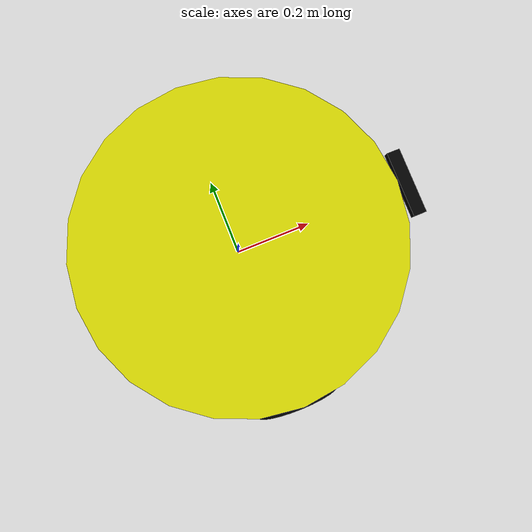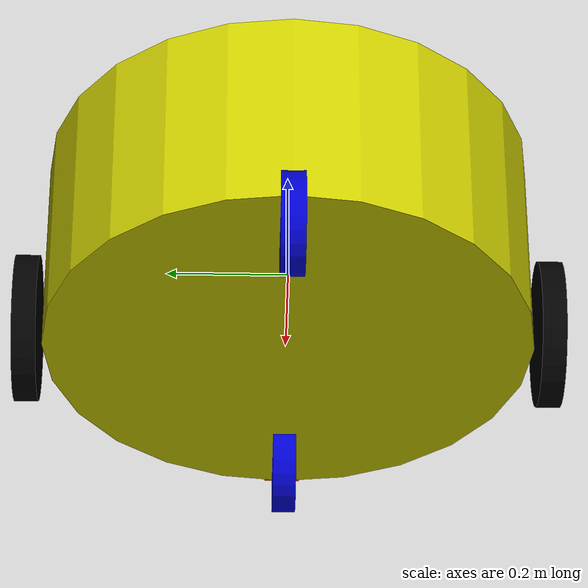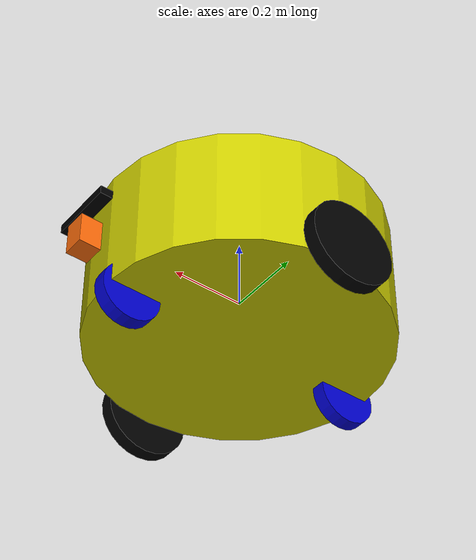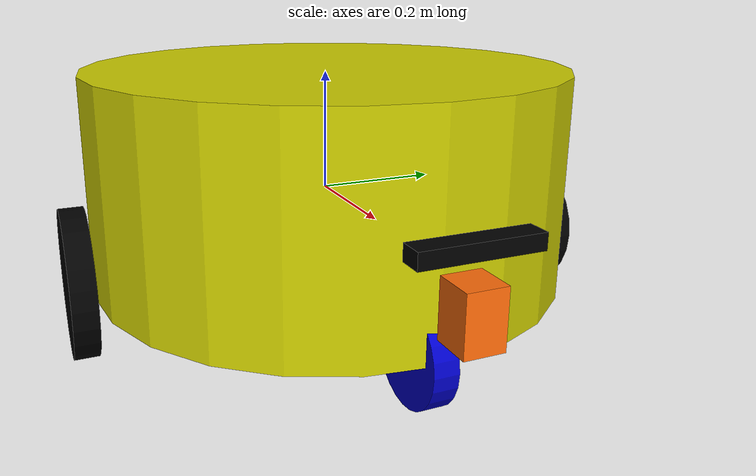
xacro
<?xml version="1.0"?>
<robot name="beebot" xmlns:xacro="http://ros.org/wiki/xacro">

  <xacro:include filename="$(find simulation_tobot)/beebot_description/urdf/beebot.gazebo" />
  <xacro:include filename="$(find simulation_tobot)/beebot_description/urdf/materials.xacro" />

  <!-- Constant for the xacro model -->
  <xacro:property name="GROUND_CLEARANCE" value="0.0335" />
  <xacro:property name="width" value="0.40" />
  <xacro:property name="xpsvwhloffset" value="0.3374" />
  <xacro:property name="yactwhloffset" value="0.4238" />
  <xacro:property name="bodylen" value="0.355" />
  <xacro:property name="wheel_w" value="0.039" />
  <xacro:property name="wheel_rad" value="0.1194" />
  <xacro:property name="plat_rad" value="0.3" />
  <xacro:property name="plat_len" value="0.005" />
  <xacro:property name="HIGH_PLATFORM" value="0.15" />
  <xacro:property name="posz_laser" value="0.285" />
  <xacro:property name="posz_camera" value="0.5" />
  <xacro:property name="fwheel_rad" value="0.08276" />
  <xacro:property name="pi" value="3.1415" />

  <!--Mass values for each link in kg-->
  <xacro:property name="base_mass" value="30" />
  <xacro:property name="plat_mass" value="2" />
  <xacro:property name="actvwheel_mass" value="10" />
  <xacro:property name="psvwheel_mass" value="1" />

  <!--Base_link-->
  <link name="base_link">
    <visual>
      <geometry>
         <cylinder length="${bodylen}" radius="${width}"/>
      </geometry>
      <origin rpy="0 0 0" xyz="0 0 ${GROUND_CLEARANCE}"/>
      <!--origin rpy="0 0 0" xyz="0 0 0"/-->
      <material name="yellow"/>
    </visual>
    <collision>
      <geometry>
         <cylinder length="${bodylen}" radius="${width}"/>
      </geometry>
      <origin rpy="0 0 0" xyz="0 0 ${bodylen/2}"/>
    </collision>
    <inertial>
        <mass value="${base_mass}" />
        <origin rpy="0 0 0" xyz="0 0 ${GROUND_CLEARANCE}" />
        <inertia
          ixx="${(1/12) * base_mass * ( 3 * (0.1 * 0.1 + width * width) + bodylen)}" ixy="0.0" ixz="0.0"
          iyy="${(1/12) * base_mass * ( 3 * (0.1 * 0.1 + width * width) + bodylen)}" iyz="0.0"
          izz="${0.5 * base_mass * ( 0.1 * 0.1 + width * width)}" />
    </inertial>
  </link>

  <!--left and right wheel-->
  <xacro:macro name="rl_wheel" params="prefix reflect">
    <link name="${prefix}_wheel">
      <visual>
        <geometry>
          <cylinder length="${wheel_w}" radius="${wheel_rad}"/>
        </geometry>
        <origin rpy="${pi/2} 0 0" xyz="0 0 0"/>
        <material name="black"/>
      </visual>
      <collision>
        <geometry>
          <cylinder length="${wheel_w}" radius="${wheel_rad}"/>
        </geometry>
        <origin rpy="${pi/2} 0 0" xyz="0 0 0"/>
      </collision>
      <inertial>
        <mass value="0.010" />
        <origin rpy="${pi/2} 0 0" xyz="0 0 0" />
        <inertia
          ixx="${(1/12) * actvwheel_mass * (3 * wheel_rad * wheel_rad + wheel_w * wheel_w)}" ixy="0.0" ixz="0.0"
          iyy="${(1/12) * actvwheel_mass * (3 * wheel_rad * wheel_rad + wheel_w * wheel_w)}" iyz="0.0"
          izz="${0.5 * actvwheel_mass * wheel_rad * wheel_rad }" />
      </inertial>
    </link>
    <joint name="${prefix}_wheel_joint" type="continuous">
      <parent link="base_link"/>
      <child link="${prefix}_wheel"/>
      <axis xyz="0 1 0"/>
      <origin xyz="0 ${-yactwhloffset*reflect} ${-(bodylen/2)+GROUND_CLEARANCE+0.031}" rpy="0 0 0"/>
    </joint>
    <transmission name="${prefix}_wheel_trans" type="SimpleTransmission">
      <type>transmission_interface/SimpleTransmission</type>
      <actuator name="${prefix}_wheel_motor">
        <mechanicalReduction>1</mechanicalReduction>
        <hardwareInterface>VelocityJointInterface</hardwareInterface>
      </actuator>
      <joint name="${prefix}_wheel_joint">
        <hardwareInterface>VelocityJointInterface</hardwareInterface>
      </joint>
    </transmission>
  </xacro:macro>
  <xacro:rl_wheel prefix="right" reflect="1" />
  <xacro:rl_wheel prefix="left" reflect="-1" />

  <!--front and back wheel-->
  <xacro:macro name="fb_wheel" params="prefix reflect">
    <link name="${prefix}_wheel">
      <visual>
        <geometry>
          <cylinder length="${wheel_w}" radius="${fwheel_rad}"/>
        </geometry>
        <origin rpy="${pi/2} 0 0" xyz="0 0 0"/>
        <material name="blue"/>
      </visual>
      <collision>
        <geometry>
          <cylinder length="${wheel_w}" radius="${fwheel_rad}"/>
        </geometry>
        <origin rpy="${pi/2} 0 0" xyz="0 0 0"/>
      </collision>
      <inertial>
        <mass value="0.010" />
        <origin rpy="${pi/2} 0 0" xyz="0 0 0" />
        <inertia
          ixx="${(1/12) * psvwheel_mass * (3 * fwheel_rad * fwheel_rad + wheel_w * wheel_w)}" ixy="0.0" ixz="0.0"
          iyy="${(1/12) * psvwheel_mass * (3 * fwheel_rad * fwheel_rad + wheel_w * wheel_w)}" iyz="0.0"
          izz="${0.5 * psvwheel_mass * fwheel_rad * fwheel_rad }" />
      </inertial>
    </link>
    <joint name="${prefix}_wheel_joint" type="continuous">
      <parent link="base_link"/>
      <child link="${prefix}_wheel"/>
      <axis xyz="0 1 0"/>
      <origin xyz="${xpsvwhloffset*reflect} 0 ${ -(bodylen/2) + 0.02786}" rpy="0 0 0"/>
    </joint>
    <transmission name="${prefix}_wheel_trans" type="SimpleTransmission">
      <type>transmission_interface/SimpleTransmission</type>
      <actuator name="${prefix}_wheel_motor">
        <mechanicalReduction>1</mechanicalReduction>
        <hardwareInterface>VelocityJointInterface</hardwareInterface>
      </actuator>
      <joint name="${prefix}_wheel_joint">
        <hardwareInterface>VelocityJointInterface</hardwareInterface>
      </joint>
    </transmission>
  </xacro:macro>
  <xacro:fb_wheel prefix="front" reflect="1"/>
  <xacro:fb_wheel prefix="back" reflect="-1"/>

  <!--CAMERA-->
  <link name="camera_link">
    <visual>
      <geometry>
        <box size="0.035 0.178 0.024"/>
      </geometry>
      <origin rpy="0 0 0" xyz="0 0 0"/>
      <material name="black"/>
    </visual>
    <collision>
      <origin xyz="0 0 0" rpy="0 0 0" />
      <geometry>
          <box size="0.035 0.185 0.025"/>
      </geometry>
    </collision>
    <inertial>
        <mass value="0.200" />
        <origin xyz="0 0 0" />
        <inertia ixx="5.8083e-4" ixy="0" ixz="0"
                 iyy="3.0833e-5" iyz="0"
                 izz="5.9083e-4" />
    </inertial>
  </link>
  <joint name="camera" type="fixed">
    <parent link="base_link"/>
    <child link="camera_link"/>
    <origin xyz="${width + 0.07} 0 0.05 " rpy="0 0 0"/>
  </joint>

  <!--LASER-->
  <link name="hokuyo_link">
    <visual>
      <geometry>
		  <box size="0.06 0.06 0.087"/>
      </geometry>
      <origin rpy="0 0 0" xyz="0 0 0"/>
      <material name="orange"/>
    </visual>
    <inertial>
        <mass value="0.270" />
        <origin xyz="0 0 0" />
        <inertia
          ixx="2.632e-4" ixy="0" ixz="0"
          iyy="2.632e-4" iyz="0"
          izz="1.62e-4" />
    </inertial>
    <collision>
        <origin xyz="0 0 -0.0115" rpy="0 0 0" />
        <geometry>
          <box size="0.058 0.058 0.087" />
        </geometry>
     </collision>
  </link>
  <joint name="base_laser" type="fixed">
    <parent link="base_link"/>
    <child link="hokuyo_link"/>
    <origin xyz="${width + 0.07} 0 ${GROUND_CLEARANCE-bodylen+posz_laser} " rpy="0 0 0"/>
  </joint>

</robot>

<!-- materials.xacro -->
<robot>

  <material name="black">
    <color rgba="0.0 0.0 0.0 1.0"/>
  </material>

  <material name="blue">
    <color rgba="0.0 0.0 0.8 1.0"/>
  </material>

  <material name="green">
    <color rgba="0.0 0.8 0.0 1.0"/>
  </material>

  <material name="grey">
    <color rgba="0.2 0.2 0.2 1.0"/>
  </material>

  <material name="orange">
    <color rgba="${255/255} ${108/255} ${10/255} 1.0"/>
  </material>

  <material name="brown">
    <color rgba="${222/255} ${207/255} ${195/255} 1.0"/>
  </material>

  <material name="red">
    <color rgba="0.8 0.0 0.0 1.0"/>
  </material>

  <material name="white">
    <color rgba="1.0 1.0 1.0 1.0"/>
  </material>

  <material name="yellow">
    <color rgba="0.8 0.8 0.0 1.0"/>
  </material>
</robot>
